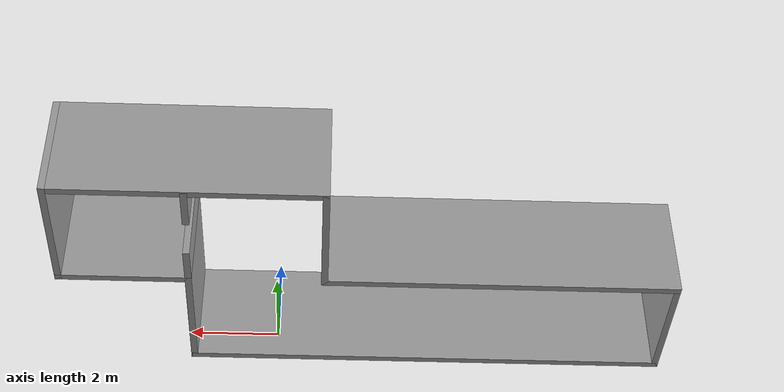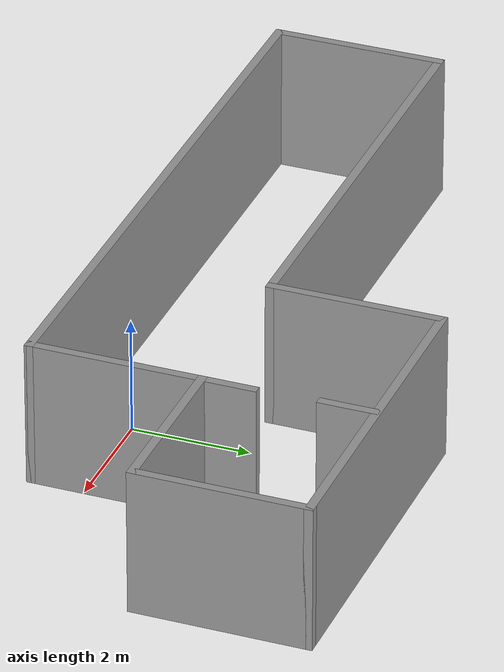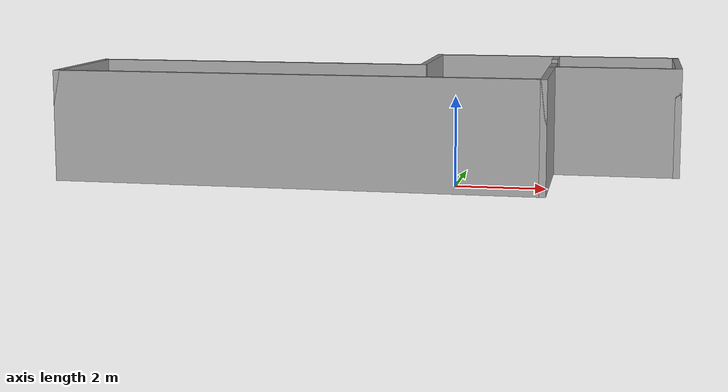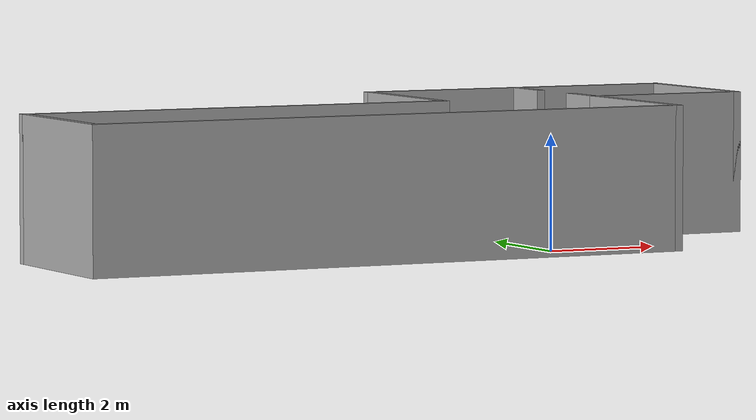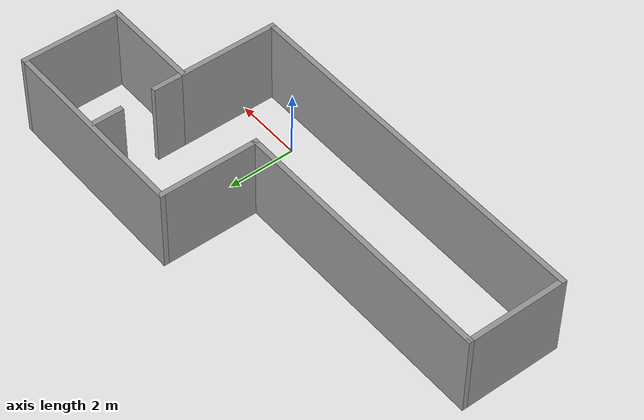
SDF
<?xml version='1.0'?>
<sdf version='1.6'>
  <model name='corridor-zigzag-door'>
    <pose frame=''>-2.03457 1.96126 0 0 -0 0</pose>
    <link name='Wall_10'>
      <collision name='Wall_10_Collision'>
        <geometry>
          <box>
            <size>3 0.15 2.5</size>
          </box>
        </geometry>
        <pose frame=''>0 0 1.25 0 -0 0</pose>
      </collision>
      <visual name='Wall_10_Visual'>
        <pose frame=''>0 0 1.25 0 -0 0</pose>
        <geometry>
          <box>
            <size>3 0.15 2.5</size>
          </box>
        </geometry>
        <material>
          <script>
            <uri>file://media/materials/scripts/gazebo.material</uri>
            <name>Gazebo/Grey</name>
          </script>
          <ambient>0.972549 0.980392 1 1</ambient>
        </material>
        <meta>
          <layer>0</layer>
        </meta>
      </visual>
      <pose frame=''>-6.85 -1.425 0 0 0 -1.5708</pose>
    </link>
    <link name='Wall_12'>
      <collision name='Wall_12_Collision'>
        <geometry>
          <box>
            <size>6 0.15 2.5</size>
          </box>
        </geometry>
        <pose frame=''>0 0 1.25 0 -0 0</pose>
      </collision>
      <visual name='Wall_12_Visual'>
        <pose frame=''>0 0 1.25 0 -0 0</pose>
        <geometry>
          <box>
            <size>6 0.15 2.5</size>
          </box>
        </geometry>
        <material>
          <script>
            <uri>file://media/materials/scripts/gazebo.material</uri>
            <name>Gazebo/Grey</name>
          </script>
          <ambient>0.972549 0.980392 1 1</ambient>
        </material>
        <meta>
          <layer>0</layer>
        </meta>
      </visual>
      <pose frame=''>3.925 2.85 0 0 -0 3.14159</pose>
    </link>
    <link name='Wall_13'>
      <collision name='Wall_13_Collision'>
        <geometry>
          <box>
            <size>3 0.15 2.5</size>
          </box>
        </geometry>
        <pose frame=''>0 0 1.25 0 -0 0</pose>
      </collision>
      <visual name='Wall_13_Visual'>
        <pose frame=''>0 0 1.25 0 -0 0</pose>
        <geometry>
          <box>
            <size>3 0.15 2.5</size>
          </box>
        </geometry>
        <material>
          <script>
            <uri>file://media/materials/scripts/gazebo.material</uri>
            <name>Gazebo/Grey</name>
          </script>
          <ambient>0.972549 0.980392 1 1</ambient>
        </material>
        <meta>
          <layer>0</layer>
        </meta>
      </visual>
      <pose frame=''>1 1.425 0 0 0 -1.5708</pose>
    </link>
    <link name='Wall_15'>
      <collision name='Wall_15_Collision'>
        <geometry>
          <box>
            <size>1 0.15 2.5</size>
          </box>
        </geometry>
        <pose frame=''>0 0 1.25 0 -0 0</pose>
      </collision>
      <visual name='Wall_15_Visual'>
        <pose frame=''>0 0 1.25 0 -0 0</pose>
        <geometry>
          <box>
            <size>1 0.15 2.5</size>
          </box>
        </geometry>
        <material>
          <script>
            <uri>file://media/materials/scripts/gazebo.material</uri>
            <name>Gazebo/Grey</name>
          </script>
          <ambient>1 1 1 1</ambient>
        </material>
        <meta>
          <layer>0</layer>
        </meta>
      </visual>
      <pose frame=''>3.94968 2.39084 0 0 0 -1.5708</pose>
    </link>
    <link name='Wall_17'>
      <collision name='Wall_17_Collision'>
        <geometry>
          <box>
            <size>1 0.15 2.5</size>
          </box>
        </geometry>
        <pose frame=''>0 0 1.25 0 -0 0</pose>
      </collision>
      <visual name='Wall_17_Visual'>
        <pose frame=''>0 0 1.25 0 -0 0</pose>
        <geometry>
          <box>
            <size>1 0.15 2.5</size>
          </box>
        </geometry>
        <material>
          <script>
            <uri>file://media/materials/scripts/gazebo.material</uri>
            <name>Gazebo/Grey</name>
          </script>
          <ambient>1 1 1 1</ambient>
        </material>
        <meta>
          <layer>0</layer>
        </meta>
      </visual>
      <pose frame=''>4 0.425 0 0 -0 1.5708</pose>
    </link>
    <link name='Wall_3'>
      <collision name='Wall_3_Collision'>
        <geometry>
          <box>
            <size>11 0.15 2.5</size>
          </box>
        </geometry>
        <pose frame=''>0 0 1.25 0 -0 0</pose>
      </collision>
      <visual name='Wall_3_Visual'>
        <pose frame=''>0 0 1.25 0 -0 0</pose>
        <geometry>
          <box>
            <size>11 0.15 2.5</size>
          </box>
        </geometry>
        <material>
          <script>
            <uri>file://media/materials/scripts/gazebo.material</uri>
            <name>Gazebo/Grey</name>
          </script>
          <ambient>0.972549 0.980392 1 1</ambient>
        </material>
        <meta>
          <layer>0</layer>
        </meta>
      </visual>
      <pose frame=''>-1.425 -2.85 0 0 -0 0</pose>
    </link>
    <link name='Wall_4'>
      <collision name='Wall_4_Collision'>
        <geometry>
          <box>
            <size>3 0.15 2.5</size>
          </box>
        </geometry>
        <pose frame=''>0 0 1.25 0 -0 0</pose>
      </collision>
      <visual name='Wall_4_Visual'>
        <pose frame=''>0 0 1.25 0 -0 0</pose>
        <geometry>
          <box>
            <size>3 0.15 2.5</size>
          </box>
        </geometry>
        <material>
          <script>
            <uri>file://media/materials/scripts/gazebo.material</uri>
            <name>Gazebo/Grey</name>
          </script>
          <ambient>0.972549 0.980392 1 1</ambient>
        </material>
        <meta>
          <layer>0</layer>
        </meta>
      </visual>
      <pose frame=''>4 -1.425 0 0 -0 1.5708</pose>
    </link>
    <link name='Wall_5'>
      <collision name='Wall_5_Collision'>
        <geometry>
          <box>
            <size>3 0.15 2.5</size>
          </box>
        </geometry>
        <pose frame=''>0 0 1.25 0 -0 0</pose>
      </collision>
      <visual name='Wall_5_Visual'>
        <pose frame=''>0 0 1.25 0 -0 0</pose>
        <geometry>
          <box>
            <size>3 0.15 2.5</size>
          </box>
        </geometry>
        <material>
          <script>
            <uri>file://media/materials/scripts/gazebo.material</uri>
            <name>Gazebo/Grey</name>
          </script>
          <ambient>0.972549 0.980392 1 1</ambient>
        </material>
        <meta>
          <layer>0</layer>
        </meta>
      </visual>
      <pose frame=''>5.425 0 0 0 -0 0</pose>
    </link>
    <link name='Wall_6'>
      <collision name='Wall_6_Collision'>
        <geometry>
          <box>
            <size>3 0.15 2.5</size>
          </box>
        </geometry>
        <pose frame=''>0 0 1.25 0 -0 0</pose>
      </collision>
      <visual name='Wall_6_Visual'>
        <pose frame=''>0 0 1.25 0 -0 0</pose>
        <geometry>
          <box>
            <size>3 0.15 2.5</size>
          </box>
        </geometry>
        <material>
          <script>
            <uri>file://media/materials/scripts/gazebo.material</uri>
            <name>Gazebo/Grey</name>
          </script>
          <ambient>0.972549 0.980392 1 1</ambient>
        </material>
        <meta>
          <layer>0</layer>
        </meta>
      </visual>
      <pose frame=''>6.85 1.425 0 0 -0 1.5708</pose>
    </link>
    <link name='Wall_9'>
      <collision name='Wall_9_Collision'>
        <geometry>
          <box>
            <size>8 0.15 2.5</size>
          </box>
        </geometry>
        <pose frame=''>0 0 1.25 0 -0 0</pose>
      </collision>
      <visual name='Wall_9_Visual'>
        <pose frame=''>0 0 1.25 0 -0 0</pose>
        <geometry>
          <box>
            <size>8 0.15 2.5</size>
          </box>
        </geometry>
        <material>
          <script>
            <uri>file://media/materials/scripts/gazebo.material</uri>
            <name>Gazebo/Grey</name>
          </script>
          <ambient>0.972549 0.980392 1 1</ambient>
        </material>
        <meta>
          <layer>0</layer>
        </meta>
      </visual>
      <pose frame=''>-2.925 0 0 0 -0 3.14159</pose>
    </link>
    <static>1</static>
  </model>
</sdf>
